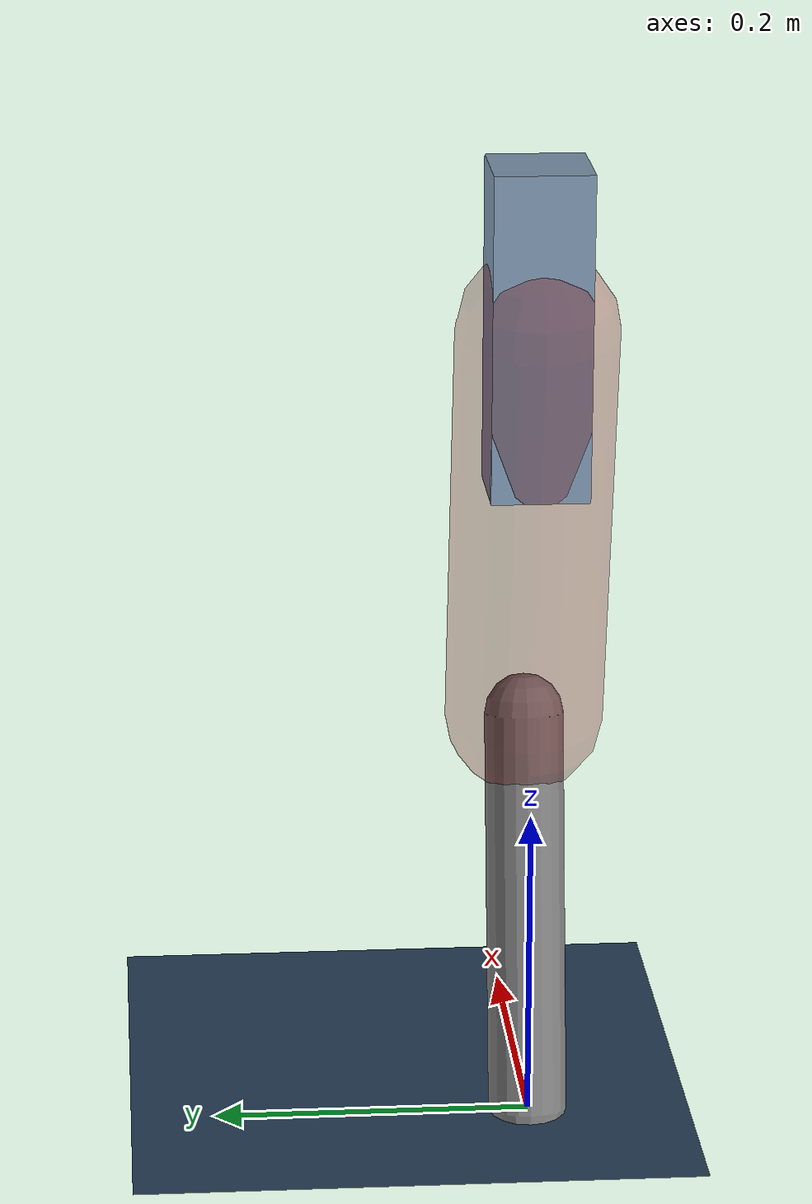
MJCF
<mujoco model="Hopper2D">
	<compiler inertiafromgeom="true" angle="radian" />
	<option timestep="0.001" integrator="implicit" cone="elliptic" solver="Newton" tolerance="1e-10" />

	<default>
		<geom contype="1" conaffinity="1" condim="3" friction="2 0.005 0.0001" solref="0.005 1" />
		<joint limited="true" damping="0.1" />
	</default>

	<asset>
		<texture name="skybox" type="skybox" builtin="gradient" rgb1=".4 .6 .8" rgb2="0 0 0" width="800" height="800" />
		<texture name="grid" type="2d" builtin="checker" rgb1=".1 .2 .3" rgb2=".2 .3 .4" width="300" height="300" mark="edge" markrgb=".2 .3 .4" />
		<material name="ground" texture="grid" texrepeat="1 1" texuniform="true" reflectance="0.1" />
		<material name="leg" rgba="0.5 0.6 0.7 1" />
	</asset>

	<worldbody>

		<geom name="floor" type="plane" size="5 5 0.25" material="ground" />

		<light directional="false" diffuse="0.8 0.8 0.8" specular="0.3 0.3 0.3" pos="0 0 2" dir="0 0 -1" />
		<light mode="targetbodycom" target="base" directional="false" diffuse="0.8 0.8 0.8" specular="0.3 0.3 0.3" pos="0 0 2" dir="0 0 -1" />

		<camera name="fixed" pos="0 -2 1" xyaxes="1 0 0 0 0 1" />
		<camera name="tracking" mode="trackcom" pos="0 -3 1" />

		<body name="root" pos="0 0 0.5143578908409789">
			<joint name="slide_x" type="slide" axis="1 0 0" range="-100 100" />
			<joint name="slide_z" type="slide" axis="0 0 1" range="0 10" />

			<body name="base" pos="0 0 0">
				<geom name="torso" type="box" size="0.03 0.03 0.1" mass="1.999" material="leg" />

				<body name="link1" pos="0 0 0" euler="0 1.3796961829330767 0">
					<joint type="hinge" axis="0 -1 0" pos="0 0 0" name="hinge1" limited="true" range="-3.14 3.14" stiffness="0" damping="0.1" />
					<geom name="thigh" type="capsule" fromto="0 0 0 0.26821573656257913 0 0" size="0.05" rgba="0.5 0 0 0.3" mass="0.9039609150627057" />

					<body name="link2" pos="0.26821573656257913 0 0" euler="0 0.3913274958888726 0">
						<joint type="hinge" axis="0 -1 0" pos="0 0 0" name="hinge2" limited="true" range="-3.14 3.14" stiffness="0" damping="0.1" />
						<geom name="shank" type="capsule" fromto="0 0 0 0.2561421542783998 0 0" size="0.025" mass="0.4476137234227199" />

					</body>
				</body>
			</body>
		</body>
	</worldbody>

	<actuator>
		<motor name="torque1" joint="hinge1" ctrlrange="-75.29517372743663 75.29517372743663" ctrllimited="true" gear="1" />
		<motor name="torque2" joint="hinge2" ctrlrange="-71.47292180945156 71.47292180945156" ctrllimited="true" gear="1" />
	</actuator>
</mujoco>
